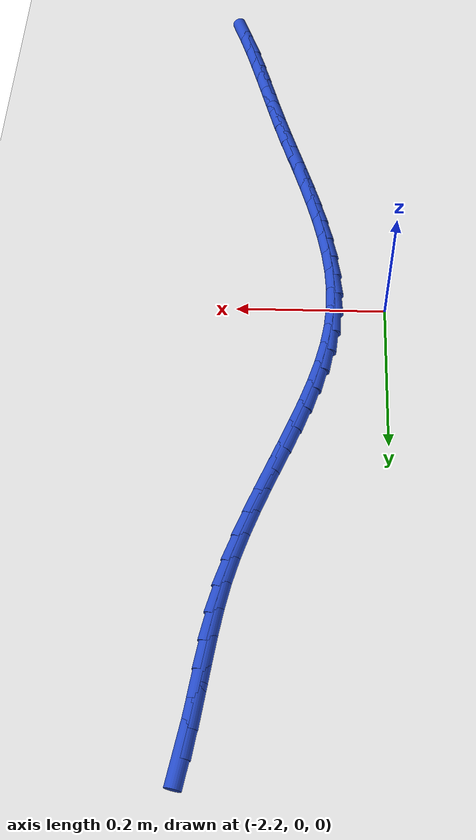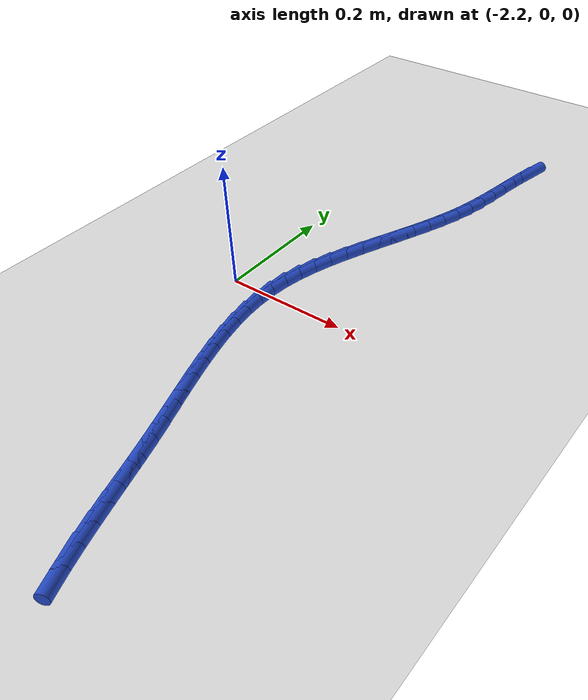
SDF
<sdf version="1.6">
 <world name="default">
  <model name="ground_plane">
   <static>1</static>
   <link name="link">
    <collision name="collision">
     <geometry><plane><normal>0 0 1</normal><size>100 100</size></plane></geometry>
     <surface><friction><ode><mu>100</mu><mu2>50</mu2></ode></friction></surface>
    </collision>
    <visual name="visual">
     <cast_shadows>0</cast_shadows>
     <geometry><plane><normal>0 0 1</normal><size>100 100</size></plane></geometry>
     <material>
      <script><uri>file://media/materials/scripts/gazebo.material</uri><name>Gazebo/WhiteGlow</name></script>
     </material>
    </visual>
   </link>
  </model>
  <model name="line">
   <link name="link_91">
    <pose>-1.9703181517254797 0.5636336530877519 0.01 0 1.57 1.373215957947978</pose>
    <collision name="collision">
     <geometry><cylinder><radius>0.01</radius><length>0.08</length></cylinder></geometry>
    </collision>
    <visual name="visual">
     <material>
      <script><name>Gazebo/Blue</name><uri>file://media/materials/scripts/gazebo.material</uri></script>
     </material>
     <geometry><cylinder><radius>0.01</radius><length>0.08</length></cylinder></geometry>
    </visual>
   </link>
   <link name="link_92">
    <pose>-1.9763281252032934 0.5336126371653963 0.01 0 1.57 1.405277171299533</pose>
    <collision name="collision">
     <geometry><cylinder><radius>0.01</radius><length>0.08</length></cylinder></geometry>
    </collision>
    <visual name="visual">
     <material>
      <script><name>Gazebo/Blue</name><uri>file://media/materials/scripts/gazebo.material</uri></script>
     </material>
     <geometry><cylinder><radius>0.01</radius><length>0.08</length></cylinder></geometry>
    </visual>
   </link>
   <link name="link_93">
    <pose>-1.9814047064759492 0.5032225833875071 0.01 0 1.57 1.4184086137036138</pose>
    <collision name="collision">
     <geometry><cylinder><radius>0.01</radius><length>0.08</length></cylinder></geometry>
    </collision>
    <visual name="visual">
     <material>
      <script><name>Gazebo/Blue</name><uri>file://media/materials/scripts/gazebo.material</uri></script>
     </material>
     <geometry><cylinder><radius>0.01</radius><length>0.08</length></cylinder></geometry>
    </visual>
   </link>
   <link name="link_94">
    <pose>-1.9861061491481427 0.4726099192283223 0.01 0 1.57 1.4129563662194218</pose>
    <collision name="collision">
     <geometry><cylinder><radius>0.01</radius><length>0.08</length></cylinder></geometry>
    </collision>
    <visual name="visual">
     <material>
      <script><name>Gazebo/Blue</name><uri>file://media/materials/scripts/gazebo.material</uri></script>
     </material>
     <geometry><cylinder><radius>0.01</radius><length>0.08</length></cylinder></geometry>
    </visual>
   </link>
   <link name="link_95">
    <pose>-1.9909907068245671 0.44192107216207915 0.01 0 1.57 1.3890811079160361</pose>
    <collision name="collision">
     <geometry><cylinder><radius>0.01</radius><length>0.08</length></cylinder></geometry>
    </collision>
    <visual name="visual">
     <material>
      <script><name>Gazebo/Blue</name><uri>file://media/materials/scripts/gazebo.material</uri></script>
     </material>
     <geometry><cylinder><radius>0.01</radius><length>0.08</length></cylinder></geometry>
    </visual>
   </link>
   <link name="link_96">
    <pose>-1.9966166331099156 0.4113024696630153 0.01 0 1.57 1.346818759652771</pose>
    <collision name="collision">
     <geometry><cylinder><radius>0.01</radius><length>0.08</length></cylinder></geometry>
    </collision>
    <visual name="visual">
     <material>
      <script><name>Gazebo/Blue</name><uri>file://media/materials/scripts/gazebo.material</uri></script>
     </material>
     <geometry><cylinder><radius>0.01</radius><length>0.08</length></cylinder></geometry>
    </visual>
   </link>
   <link name="link_97">
    <pose>-2.0035421816088825 0.38090053920536826 0.01 0 1.57 1.2904703171033403</pose>
    <collision name="collision">
     <geometry><cylinder><radius>0.01</radius><length>0.08</length></cylinder></geometry>
    </collision>
    <visual name="visual">
     <material>
      <script><name>Gazebo/Blue</name><uri>file://media/materials/scripts/gazebo.material</uri></script>
     </material>
     <geometry><cylinder><radius>0.01</radius><length>0.08</length></cylinder></geometry>
    </visual>
   </link>
   <link name="link_98">
    <pose>-2.0121981713825723 0.3508353445813041 0.01 0 1.57 1.2402947980613035</pose>
    <collision name="collision">
     <geometry><cylinder><radius>0.01</radius><length>0.08</length></cylinder></geometry>
    </collision>
    <visual name="visual">
     <material>
      <script><name>Gazebo/Blue</name><uri>file://media/materials/scripts/gazebo.material</uri></script>
     </material>
     <geometry><cylinder><radius>0.01</radius><length>0.08</length></cylinder></geometry>
    </visual>
   </link>
   <link name="link_99">
    <pose>-2.0224000546902383 0.3210996423846124 0.01 0 1.57 1.2021414684327894</pose>
    <collision name="collision">
     <geometry><cylinder><radius>0.01</radius><length>0.08</length></cylinder></geometry>
    </collision>
    <visual name="visual">
     <material>
      <script><name>Gazebo/Blue</name><uri>file://media/materials/scripts/gazebo.material</uri></script>
     </material>
     <geometry><cylinder><radius>0.01</radius><length>0.08</length></cylinder></geometry>
    </visual>
   </link>
   <link name="link_100">
    <pose>-2.0337777815364464 0.29164781246814175 0.01 0 1.57 1.1756798933032262</pose>
    <collision name="collision">
     <geometry><cylinder><radius>0.01</radius><length>0.08</length></cylinder></geometry>
    </collision>
    <visual name="visual">
     <material>
      <script><name>Gazebo/Blue</name><uri>file://media/materials/scripts/gazebo.material</uri></script>
     </material>
     <geometry><cylinder><radius>0.01</radius><length>0.08</length></cylinder></geometry>
    </visual>
   </link>
   <link name="link_101">
    <pose>-2.0459612639118974 0.2624342268204276 0.01 0 1.57 1.1606302377271196</pose>
    <collision name="collision">
     <geometry><cylinder><radius>0.01</radius><length>0.08</length></cylinder></geometry>
    </collision>
    <visual name="visual">
     <material>
      <script><name>Gazebo/Blue</name><uri>file://media/materials/scripts/gazebo.material</uri></script>
     </material>
     <geometry><cylinder><radius>0.01</radius><length>0.08</length></cylinder></geometry>
    </visual>
   </link>
   <link name="link_102">
    <pose>-2.0585804138072956 0.2334132574300037 0.01 0 1.57 1.156864757524572</pose>
    <collision name="collision">
     <geometry><cylinder><radius>0.01</radius><length>0.08</length></cylinder></geometry>
    </collision>
    <visual name="visual">
     <material>
      <script><name>Gazebo/Blue</name><uri>file://media/materials/scripts/gazebo.material</uri></script>
     </material>
     <geometry><cylinder><radius>0.01</radius><length>0.08</length></cylinder></geometry>
    </visual>
   </link>
   <link name="link_103">
    <pose>-2.071265143213344 0.20453927628540564 0.01 0 1.57 1.164463816087547</pose>
    <collision name="collision">
     <geometry><cylinder><radius>0.01</radius><length>0.08</length></cylinder></geometry>
    </collision>
    <visual name="visual">
     <material>
      <script><name>Gazebo/Blue</name><uri>file://media/materials/scripts/gazebo.material</uri></script>
     </material>
     <geometry><cylinder><radius>0.01</radius><length>0.08</length></cylinder></geometry>
    </visual>
   </link>
   <link name="link_104">
    <pose>-2.0836453641207466 0.17576665537516736 0.01 0 1.57 1.1837369126349202</pose>
    <collision name="collision">
     <geometry><cylinder><radius>0.01</radius><length>0.08</length></cylinder></geometry>
    </collision>
    <visual name="visual">
     <material>
      <script><name>Gazebo/Blue</name><uri>file://media/materials/scripts/gazebo.material</uri></script>
     </material>
     <geometry><cylinder><radius>0.01</radius><length>0.08</length></cylinder></geometry>
    </visual>
   </link>
   <link name="link_105">
    <pose>-2.0953509885202064 0.14704976668782438 0.01 0 1.57 1.215208812015528</pose>
    <collision name="collision">
     <geometry><cylinder><radius>0.01</radius><length>0.08</length></cylinder></geometry>
    </collision>
    <visual name="visual">
     <material>
      <script><name>Gazebo/Blue</name><uri>file://media/materials/scripts/gazebo.material</uri></script>
     </material>
     <geometry><cylinder><radius>0.01</radius><length>0.08</length></cylinder></geometry>
    </visual>
   </link>
   <link name="link_106">
    <pose>-2.1060119284024252 0.1183429822119105 0.01 0 1.57 1.259559407181883</pose>
    <collision name="collision">
     <geometry><cylinder><radius>0.01</radius><length>0.08</length></cylinder></geometry>
    </collision>
    <visual name="visual">
     <material>
      <script><name>Gazebo/Blue</name><uri>file://media/materials/scripts/gazebo.material</uri></script>
     </material>
     <geometry><cylinder><radius>0.01</radius><length>0.08</length></cylinder></geometry>
    </visual>
   </link>
   <link name="link_107">
    <pose>-2.115258095758108 0.08960067393596127 0.01 0 1.57 1.3174942359375528</pose>
    <collision name="collision">
     <geometry><cylinder><radius>0.01</radius><length>0.08</length></cylinder></geometry>
    </collision>
    <visual name="visual">
     <material>
      <script><name>Gazebo/Blue</name><uri>file://media/materials/scripts/gazebo.material</uri></script>
     </material>
     <geometry><cylinder><radius>0.01</radius><length>0.08</length></cylinder></geometry>
    </visual>
   </link>
   <link name="link_108">
    <pose>-2.1227194025779563 0.06077721384851056 0.01 0 1.57 1.3895161776313036</pose>
    <collision name="collision">
     <geometry><cylinder><radius>0.01</radius><length>0.08</length></cylinder></geometry>
    </collision>
    <visual name="visual">
     <material>
      <script><name>Gazebo/Blue</name><uri>file://media/materials/scripts/gazebo.material</uri></script>
     </material>
     <geometry><cylinder><radius>0.01</radius><length>0.08</length></cylinder></geometry>
    </visual>
   </link>
   <link name="link_109">
    <pose>-2.128025760852675 0.03182697393809391 0.01 0 1.57 1.4754083664931723</pose>
    <collision name="collision">
     <geometry><cylinder><radius>0.01</radius><length>0.08</length></cylinder></geometry>
    </collision>
    <visual name="visual">
     <material>
      <script><name>Gazebo/Blue</name><uri>file://media/materials/scripts/gazebo.material</uri></script>
     </material>
     <geometry><cylinder><radius>0.01</radius><length>0.08</length></cylinder></geometry>
    </visual>
   </link>
   <link name="link_110">
    <pose>-2.1308121228621424 0.0027047874348219 0.01 0 1.57 1.5654097592935652</pose>
    <collision name="collision">
     <geometry><cylinder><radius>0.01</radius><length>0.08</length></cylinder></geometry>
    </collision>
    <visual name="visual">
     <material>
      <script><name>Gazebo/Blue</name><uri>file://media/materials/scripts/gazebo.material</uri></script>
     </material>
     <geometry><cylinder><radius>0.01</radius><length>0.08</length></cylinder></geometry>
    </visual>
   </link>
   <link name="link_111">
    <pose>-2.1309700360252064 -0.02661103117003024 0.01 0 1.57 -1.4961617885967262</pose>
    <collision name="collision">
     <geometry><cylinder><radius>0.01</radius><length>0.08</length></cylinder></geometry>
    </collision>
    <visual name="visual">
     <material>
      <script><name>Gazebo/Blue</name><uri>file://media/materials/scripts/gazebo.material</uri></script>
     </material>
     <geometry><cylinder><radius>0.01</radius><length>0.08</length></cylinder></geometry>
    </visual>
   </link>
   <link name="link_112">
    <pose>-2.1287644467837987 -0.056107997291342394 0.01 0 1.57 -1.427672249864527</pose>
    <collision name="collision">
     <geometry><cylinder><radius>0.01</radius><length>0.08</length></cylinder></geometry>
    </collision>
    <visual name="visual">
     <material>
      <script><name>Gazebo/Blue</name><uri>file://media/materials/scripts/gazebo.material</uri></script>
     </material>
     <geometry><cylinder><radius>0.01</radius><length>0.08</length></cylinder></geometry>
    </visual>
   </link>
   <link name="link_113">
    <pose>-2.1244897381893244 -0.08577093257232878 0.01 0 1.57 -1.3706061392564273</pose>
    <collision name="collision">
     <geometry><cylinder><radius>0.01</radius><length>0.08</length></cylinder></geometry>
    </collision>
    <visual name="visual">
     <material>
      <script><name>Gazebo/Blue</name><uri>file://media/materials/scripts/gazebo.material</uri></script>
     </material>
     <geometry><cylinder><radius>0.01</radius><length>0.08</length></cylinder></geometry>
    </visual>
   </link>
   <link name="link_114">
    <pose>-2.118440293293187 -0.11558465865620435 0.01 0 1.57 -1.3244836673300675</pose>
    <collision name="collision">
     <geometry><cylinder><radius>0.01</radius><length>0.08</length></cylinder></geometry>
    </collision>
    <visual name="visual">
     <material>
      <script><name>Gazebo/Blue</name><uri>file://media/materials/scripts/gazebo.material</uri></script>
     </material>
     <geometry><cylinder><radius>0.01</radius><length>0.08</length></cylinder></geometry>
    </visual>
   </link>
   <link name="link_115">
    <pose>-2.1109104951467925 -0.1455339971861818 0.01 0 1.57 -1.2886759010706228</pose>
    <collision name="collision">
     <geometry><cylinder><radius>0.01</radius><length>0.08</length></cylinder></geometry>
    </collision>
    <visual name="visual">
     <material>
      <script><name>Gazebo/Blue</name><uri>file://media/materials/scripts/gazebo.material</uri></script>
     </material>
     <geometry><cylinder><radius>0.01</radius><length>0.08</length></cylinder></geometry>
    </visual>
   </link>
   <link name="link_116">
    <pose>-2.1021947268015455 -0.17560376980547615 0.01 0 1.57 -1.2625566739612064</pose>
    <collision name="collision">
     <geometry><cylinder><radius>0.01</radius><length>0.08</length></cylinder></geometry>
    </collision>
    <visual name="visual">
     <material>
      <script><name>Gazebo/Blue</name><uri>file://media/materials/scripts/gazebo.material</uri></script>
     </material>
     <geometry><cylinder><radius>0.01</radius><length>0.08</length></cylinder></geometry>
    </visual>
   </link>
   <link name="link_117">
    <pose>-2.09258737130885 -0.2057787981573015 0.01 0 1.57 -1.2455945636854118</pose>
    <collision name="collision">
     <geometry><cylinder><radius>0.01</radius><length>0.08</length></cylinder></geometry>
    </collision>
    <visual name="visual">
     <material>
      <script><name>Gazebo/Blue</name><uri>file://media/materials/scripts/gazebo.material</uri></script>
     </material>
     <geometry><cylinder><radius>0.01</radius><length>0.08</length></cylinder></geometry>
    </visual>
   </link>
   <link name="link_118">
    <pose>-2.0823828117201115 -0.23604390388487298 0.01 0 1.57 -1.2374027696604097</pose>
    <collision name="collision">
     <geometry><cylinder><radius>0.01</radius><length>0.08</length></cylinder></geometry>
    </collision>
    <visual name="visual">
     <material>
      <script><name>Gazebo/Blue</name><uri>file://media/materials/scripts/gazebo.material</uri></script>
     </material>
     <geometry><cylinder><radius>0.01</radius><length>0.08</length></cylinder></geometry>
    </visual>
   </link>
   <link name="link_119">
    <pose>-2.0718754310867347 -0.2663839086314031 0.01 0 1.57 -1.2377624629379016</pose>
    <collision name="collision">
     <geometry><cylinder><radius>0.01</radius><length>0.08</length></cylinder></geometry>
    </collision>
    <visual name="visual">
     <material>
      <script><name>Gazebo/Blue</name><uri>file://media/materials/scripts/gazebo.material</uri></script>
     </material>
     <geometry><cylinder><radius>0.01</radius><length>0.08</length></cylinder></geometry>
    </visual>
   </link>
   <link name="link_120">
    <pose>-2.061359612460125 -0.29678363404010705 0.01 0 1.57 -1.2466299488496893</pose>
    <collision name="collision">
     <geometry><cylinder><radius>0.01</radius><length>0.08</length></cylinder></geometry>
    </collision>
    <visual name="visual">
     <material>
      <script><name>Gazebo/Blue</name><uri>file://media/materials/scripts/gazebo.material</uri></script>
     </material>
     <geometry><cylinder><radius>0.01</radius><length>0.08</length></cylinder></geometry>
    </visual>
   </link>
   <link name="link_121">
    <pose>-2.051129737315942 -0.3272279014874091 0.01 0 1.57 -1.2612122518426716</pose>
    <collision name="collision">
     <geometry><cylinder><radius>0.01</radius><length>0.08</length></cylinder></geometry>
    </collision>
    <visual name="visual">
     <material>
      <script><name>Gazebo/Blue</name><uri>file://media/materials/scripts/gazebo.material</uri></script>
     </material>
     <geometry><cylinder><radius>0.01</radius><length>0.08</length></cylinder></geometry>
    </visual>
   </link>
   <link name="link_122">
    <pose>-2.0413872042918006 -0.35768578939336404 0.01 0 1.57 -1.2708237895050285</pose>
    <collision name="collision">
     <geometry><cylinder><radius>0.01</radius><length>0.08</length></cylinder></geometry>
    </collision>
    <visual name="visual">
     <material>
      <script><name>Gazebo/Blue</name><uri>file://media/materials/scripts/gazebo.material</uri></script>
     </material>
     <geometry><cylinder><radius>0.01</radius><length>0.08</length></cylinder></geometry>
    </visual>
   </link>
   <link name="link_123">
    <pose>-2.031989740927068 -0.3880681891058813 0.01 0 1.57 -1.2728903512089396</pose>
    <collision name="collision">
     <geometry><cylinder><radius>0.01</radius><length>0.08</length></cylinder></geometry>
    </collision>
    <visual name="visual">
     <material>
      <script><name>Gazebo/Blue</name><uri>file://media/materials/scripts/gazebo.material</uri></script>
     </material>
     <geometry><cylinder><radius>0.01</radius><length>0.08</length></cylinder></geometry>
    </visual>
   </link>
   <link name="link_124">
    <pose>-2.022715692765466 -0.4182725517798186 0.01 0 1.57 -1.267268977939521</pose>
    <collision name="collision">
     <geometry><cylinder><radius>0.01</radius><length>0.08</length></cylinder></geometry>
    </collision>
    <visual name="visual">
     <material>
      <script><name>Gazebo/Blue</name><uri>file://media/materials/scripts/gazebo.material</uri></script>
     </material>
     <geometry><cylinder><radius>0.01</radius><length>0.08</length></cylinder></geometry>
    </visual>
   </link>
   <link name="link_125">
    <pose>-2.0133434053507195 -0.44819632857003294 0.01 0 1.57 -1.2537663079785597</pose>
    <collision name="collision">
     <geometry><cylinder><radius>0.01</radius><length>0.08</length></cylinder></geometry>
    </collision>
    <visual name="visual">
     <material>
      <script><name>Gazebo/Blue</name><uri>file://media/materials/scripts/gazebo.material</uri></script>
     </material>
     <geometry><cylinder><radius>0.01</radius><length>0.08</length></cylinder></geometry>
    </visual>
   </link>
   <link name="link_126">
    <pose>-2.00365122422655 -0.4777369706313825 0.01 0 1.57 -1.232145400467343</pose>
    <collision name="collision">
     <geometry><cylinder><radius>0.01</radius><length>0.08</length></cylinder></geometry>
    </collision>
    <visual name="visual">
     <material>
      <script><name>Gazebo/Blue</name><uri>file://media/materials/scripts/gazebo.material</uri></script>
     </material>
     <geometry><cylinder><radius>0.01</radius><length>0.08</length></cylinder></geometry>
    </visual>
   </link>
   <link name="link_127">
    <pose>-1.993417494936681 -0.5067919291187227 0.01 0 1.57 -1.202148593514274</pose>
    <collision name="collision">
     <geometry><cylinder><radius>0.01</radius><length>0.08</length></cylinder></geometry>
    </collision>
    <visual name="visual">
     <material>
      <script><name>Gazebo/Blue</name><uri>file://media/materials/scripts/gazebo.material</uri></script>
     </material>
     <geometry><cylinder><radius>0.01</radius><length>0.08</length></cylinder></geometry>
    </visual>
   </link>
  </model>
 </world>
</sdf>
